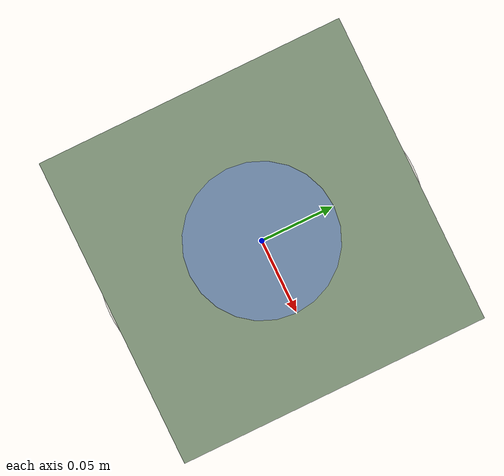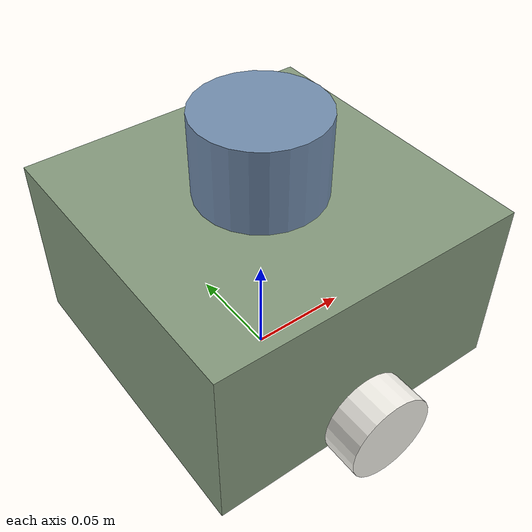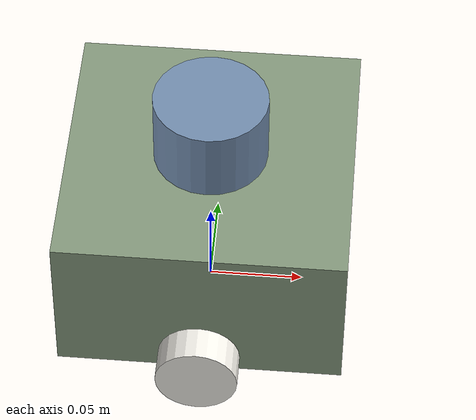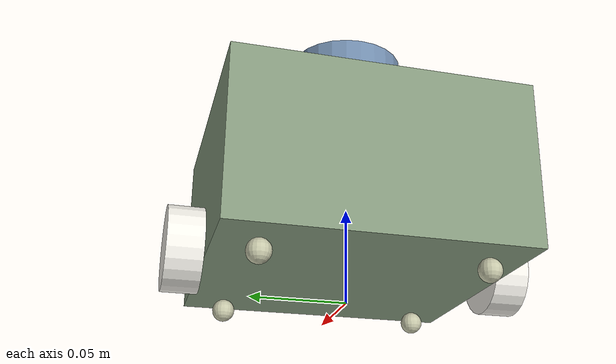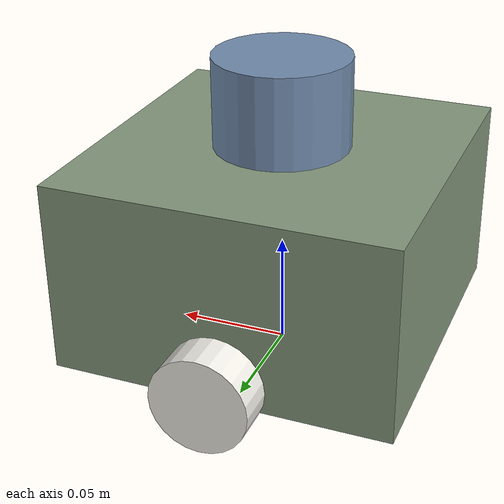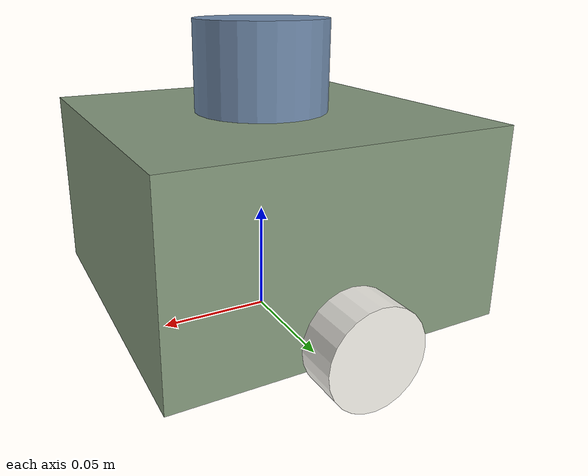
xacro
<?xml version="1.0"?>
<robot name="synmech_mobot" xmlns:xacro="http://www.ros.org/wiki/xacro">
    <xacro:include filename="inertial_macros.xacro"/>

    <material name="red"><color rgba="0.5 0.125 0.125 1"/></material>
    <material name="black"><color rgba="1 1 1 1"/></material>
    <material name="navy"><color rgba="0.447 0.553 0.682 1"/></material>
    <material name="matcha"><color rgba="0.52 0.6 0.49 1"/></material>
    <material name="c3"><color rgba="0.785 0.789 0.672 1"/></material>
    <material name="c4"><color rgba="0.96 0.95 0.92 1"/></material>

    <link name="base_footprint"/>
    <link name="base_link"/>
    <joint name="base_footprint_joint" type="fixed">
        <parent link="base_footprint"/>
        <child link="base_link"/>
        <origin xyz="0 0 0.012" rpy="0 0 0"/>
    </joint>

    <link name="chasis_link">
        <visual>
            <origin xyz="0 0 0.0425"/>
            <geometry><box size="0.15 0.15 0.085"/></geometry>
            <material name="matcha"/>
        </visual>
        <collision>
            <origin xyz="0 0 0.0425"/>
            <geometry><box size="0.15 0.15 0.085"/></geometry>
        </collision>
        <xacro:inertial_box mass="0.5" x="0.15" y="0.15" z="0.085">
            <origin xyz="0 0 0.0425" rpy="0 0 0"/>
        </xacro:inertial_box>
    </link>
    <gazebo reference="chasis_link"/>
    <joint name="chasis_base" type="fixed">
        <parent link="base_link"/>
        <child link="chasis_link"/>
        <origin xyz="0 0 0"/>
    </joint>

    <link name="laser_frame">
        <visual>
            <origin xyz="0 0 0.02"/>
            <geometry><cylinder radius="0.03" length="0.04"/></geometry>
            <material name="navy"/>
        </visual>
        <collision>
            <origin xyz="0 0 0.02"/>
            <geometry><cylinder radius="0.03" length="0.04"/></geometry>
        </collision>
        <xacro:inertial_cylinder mass="0.17" radius="0.03" length="0.04">
            <origin xyz="0 0 0.02" rpy="0 0 0"/>
        </xacro:inertial_cylinder>
    </link>
    <gazebo reference="laser_frame"/>
    <joint name="laser_base" type="fixed">
        <parent link="base_link"/>
        <child link="laser_frame"/>
        <origin xyz="0 0 0.085"/>
    </joint>

    <link name="left_wheel_link">
        <visual>
            <geometry><cylinder radius="0.0215" length="0.018"/></geometry>
            <material name="c4"/>
        </visual>
        <collision>
            <geometry><cylinder radius="0.0215" length="0.018"/></geometry>
        </collision>
        <xacro:inertial_cylinder mass="0.015" radius="0.0215" length="0.018">
            <origin xyz="0 0 0" rpy="0 0 0"/>
        </xacro:inertial_cylinder>
    </link>
    <gazebo reference="left_wheel_link"/>
    <joint name="left_wheel_base" type="continuous">
        <parent link="base_link"/>
        <child link="left_wheel_link"/>
        <origin xyz="0 0.084 0.0095" rpy="${-pi/2} 0 0"/>
        <axis xyz="0 0 1"/>
    </joint>

    <link name="right_wheel_link">
        <visual>
            <geometry><cylinder radius="0.0215" length="0.018"/></geometry>
            <material name="c4"/>
        </visual>
        <collision>
            <geometry><cylinder radius="0.0215" length="0.018"/></geometry>
        </collision>
        <xacro:inertial_cylinder mass="0.015" radius="0.0215" length="0.018">
            <origin xyz="0 0 0" rpy="0 0 0"/>
        </xacro:inertial_cylinder>
    </link>
    <gazebo reference="right_wheel_link"/>
    <joint name="right_wheel_base" type="continuous">
        <parent link="base_link"/>
        <child link="right_wheel_link"/>
        <origin xyz="0 -0.084 0.0095" rpy="${pi/2} 0 0"/>
        <axis xyz="0 0 -1"/>
    </joint>

    <link name="caster1_link">
        <visual>
            <geometry><sphere radius="0.006"/></geometry>
            <material name="c3"/>
        </visual>
        <collision>
            <geometry><sphere radius="0.006"/></geometry>
        </collision>
        <xacro:inertial_sphere mass="0.015" radius="0.006">
            <origin xyz="0 0 0" rpy="0 0 0"/>
        </xacro:inertial_sphere>
    </link>
    <gazebo reference="caster1_link"/>
    <joint name="caster1_base" type="fixed">
        <parent link="base_link"/>
        <child link="caster1_link"/>
        <origin xyz="0.055 0.055 -0.006"/>
    </joint>

    <link name="caster2_link">
        <visual>
            <geometry><sphere radius="0.006"/></geometry>
            <material name="c3"/>
        </visual>
        <collision>
            <geometry><sphere radius="0.006"/></geometry>
        </collision>
        <xacro:inertial_sphere mass="0.015" radius="0.006">
            <origin xyz="0 0 0" rpy="0 0 0"/>
        </xacro:inertial_sphere>
    </link>
    <gazebo reference="caster2_link"/>
    <joint name="caster2_base" type="fixed">
        <parent link="base_link"/>
        <child link="caster2_link"/>
        <origin xyz="-0.055 0.055 -0.006"/>
    </joint>

    <link name="caster3_link">
        <visual>
            <geometry><sphere radius="0.006"/></geometry>
            <material name="c3"/>
        </visual>
        <collision>
            <geometry><sphere radius="0.006"/></geometry>
        </collision>
        <xacro:inertial_sphere mass="0.015" radius="0.006">
            <origin xyz="0 0 0" rpy="0 0 0"/>
        </xacro:inertial_sphere>
    </link>
    <gazebo reference="caster3_link"/>
    <joint name="caster3_base" type="fixed">
        <parent link="base_link"/>
        <child link="caster3_link"/>
        <origin xyz="0.055 -0.055 -0.006"/>
    </joint>

    <link name="caster4_link">
        <visual>
            <geometry><sphere radius="0.006"/></geometry>
            <material name="c3"/>
        </visual>
        <collision>
            <geometry><sphere radius="0.006"/></geometry>
        </collision>
        <xacro:inertial_sphere mass="0.015" radius="0.006">
            <origin xyz="0 0 0" rpy="0 0 0"/>
        </xacro:inertial_sphere>
    </link>
    <gazebo reference="caster4_link"/>
    <joint name="caster4_base" type="fixed">
        <parent link="base_link"/>
        <child link="caster4_link"/>
        <origin xyz="-0.055 -0.055 -0.006"/>
    </joint>
</robot>

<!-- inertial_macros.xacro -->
<robot xmlns:xacro="https://www.ros.org/wiki/xacro" name="robot">

    <!-- Specify some standard inertial calculations https://en.wikipedia.org/wiki/List_of_moments_of_inertia -->
    <!-- These make use of xacro's mathematical functionality -->

    <xacro:macro name="inertial_sphere" params="mass radius *origin">
        <inertial>
            <xacro:insert_block name="origin"/>
            <mass value="${mass}" />
            <inertia ixx="${(2/5) * mass * (radius*radius)}" ixy="0.0" ixz="0.0"
                    iyy="${(2/5) * mass * (radius*radius)}" iyz="0.0"
                    izz="${(2/5) * mass * (radius*radius)}" />
        </inertial>
    </xacro:macro>

    <xacro:macro name="inertial_box" params="mass x y z *origin">
        <inertial>
            <xacro:insert_block name="origin"/>
            <mass value="${mass}" />
            <inertia ixx="${(1/12) * mass * (y*y+z*z)}" ixy="0.0" ixz="0.0"
                    iyy="${(1/12) * mass * (x*x+z*z)}" iyz="0.0"
                    izz="${(1/12) * mass * (x*x+y*y)}" />
        </inertial>
    </xacro:macro>

    <xacro:macro name="inertial_cylinder" params="mass length radius *origin">
        <inertial>
            <xacro:insert_block name="origin"/>
            <mass value="${mass}" />
            <inertia ixx="${(1/12) * mass * (3*radius*radius + length*length)}" ixy="0.0" ixz="0.0"
                    iyy="${(1/12) * mass * (3*radius*radius + length*length)}" iyz="0.0"
                    izz="${(1/2) * mass * (radius*radius)}" />
        </inertial>
    </xacro:macro>

</robot>
